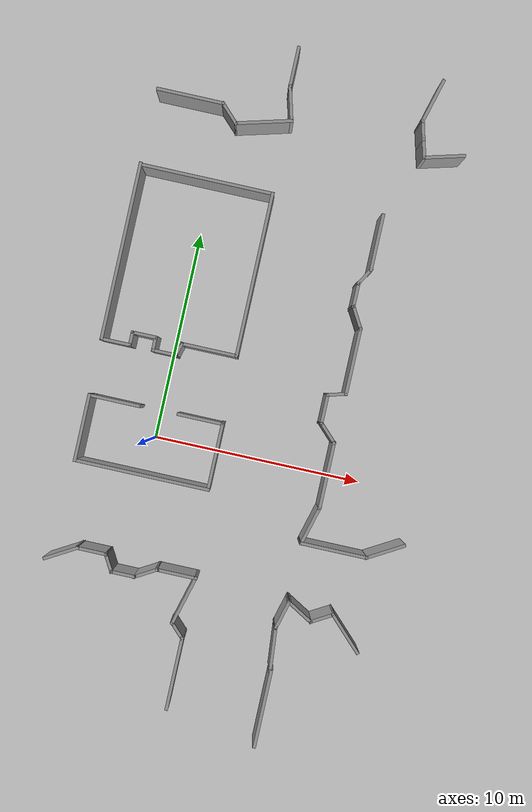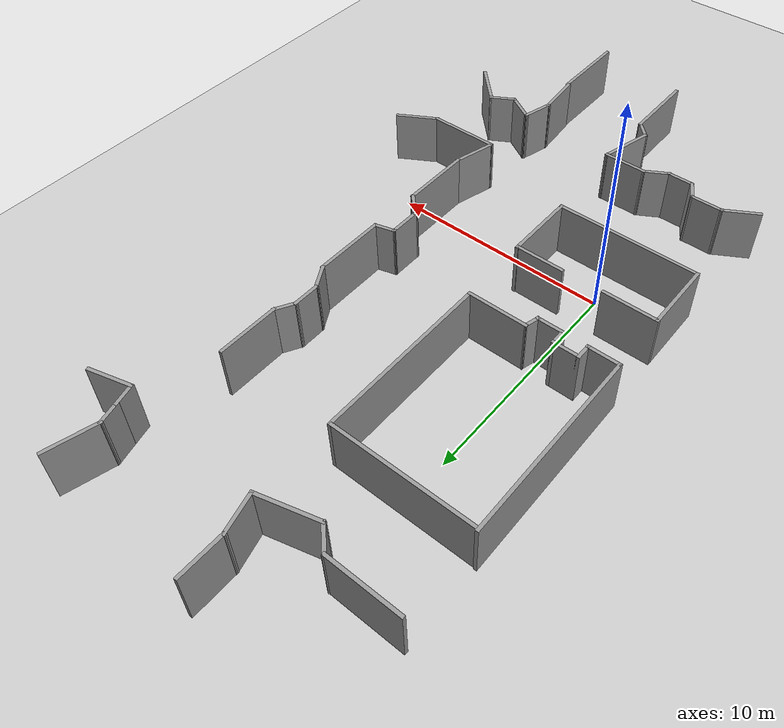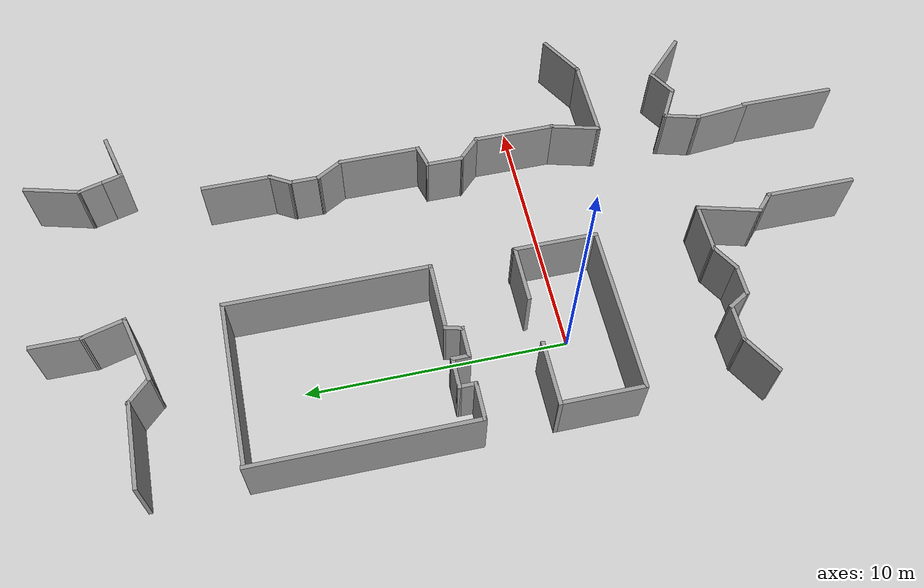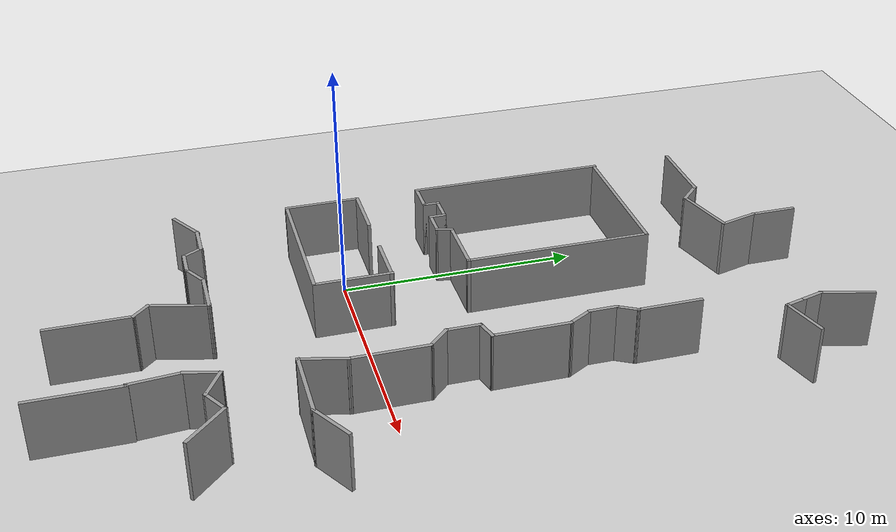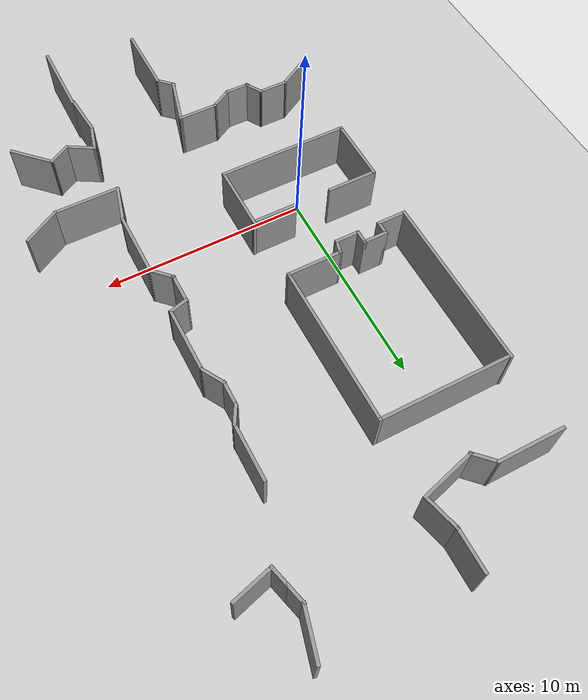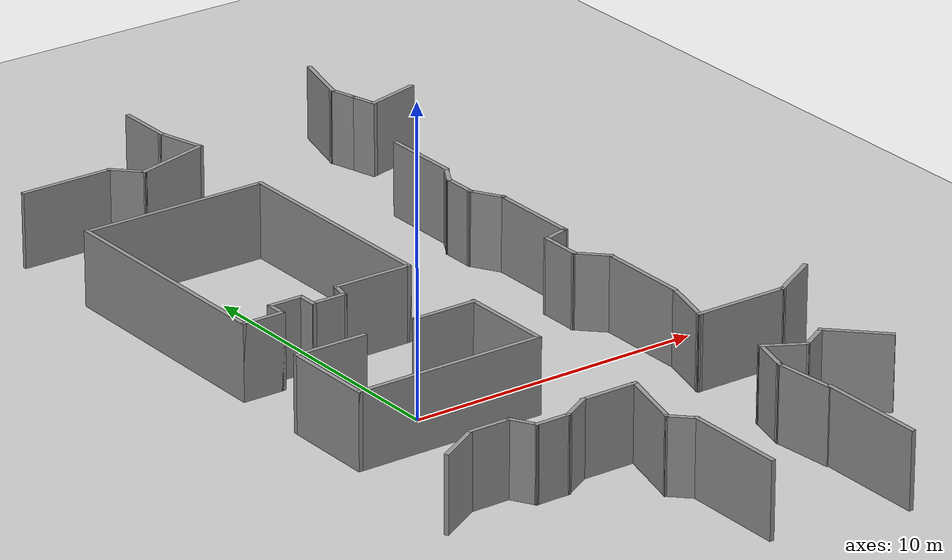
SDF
<sdf version="1.6">
 <world name="default">
  <model name="ground_plane">
   <static>1</static>
   <link name="link">
    <collision name="collision">
     <geometry><plane><normal>0 0 1</normal><size>100 100</size></plane></geometry>
     <surface><friction><ode><mu>100</mu><mu2>50</mu2></ode></friction></surface>
    </collision>
    <visual name="visual">
     <cast_shadows>0</cast_shadows>
     <geometry><plane><normal>0 0 1</normal><size>100 100</size></plane></geometry>
     <material>
      <script><uri>file://media/materials/scripts/gazebo.material</uri><name>Gazebo/Grey</name></script>
     </material>
    </visual>
   </link>
  </model>
  <model name="room">
   <pose>12.4952 3.15232 0 0 -0 0</pose>
   <link name="Wall_321">
    <collision name="Wall_321_Collision">
     <geometry><box><size>3.25 0.15 2.5</size></box></geometry>
     <pose>0 0 1.25 0 -0 0</pose>
    </collision>
    <visual name="Wall_321_Visual">
     <pose>0 0 1.25 0 -0 0</pose>
     <geometry><box><size>3.25 0.15 2.5</size></box></geometry>
     <material>
      <script><uri>file://media/materials/scripts/gazebo.material</uri><name>Gazebo/Grey</name></script>
      <ambient>1 1 1 1</ambient>
     </material>
     <meta><layer>0</layer></meta>
    </visual>
    <pose>-15.7858 -3.34429 0 0 0 -1.5708</pose>
   </link>
   <link name="Wall_323">
    <collision name="Wall_323_Collision">
     <geometry><box><size>6.5 0.15 2.5</size></box></geometry>
     <pose>0 0 1.25 0 -0 0</pose>
    </collision>
    <visual name="Wall_323_Visual">
     <pose>0 0 1.25 0 -0 0</pose>
     <geometry><box><size>6.5 0.15 2.5</size></box></geometry>
     <material>
      <script><uri>file://media/materials/scripts/gazebo.material</uri><name>Gazebo/Grey</name></script>
      <ambient>1 1 1 1</ambient>
     </material>
     <meta><layer>0</layer></meta>
    </visual>
    <pose>-12.6108 -4.89429 0 0 -0 0</pose>
   </link>
   <link name="Wall_324">
    <collision name="Wall_324_Collision">
     <geometry><box><size>3.30947 0.15 2.5</size></box></geometry>
     <pose>0 0 1.25 0 -0 0</pose>
    </collision>
    <visual name="Wall_324_Visual">
     <pose>0 0 1.25 0 -0 0</pose>
     <geometry><box><size>3.30947 0.15 2.5</size></box></geometry>
     <material>
      <script><uri>file://media/materials/scripts/gazebo.material</uri><name>Gazebo/Grey</name></script>
      <ambient>1 1 1 1</ambient>
     </material>
     <meta><layer>0</layer></meta>
    </visual>
    <pose>-9.4358 -3.31455 0 0 -0 1.5708</pose>
   </link>
   <link name="Wall_325">
    <collision name="Wall_325_Collision">
     <geometry><box><size>2.25 0.15 2.5</size></box></geometry>
     <pose>0 0 1.25 0 -0 0</pose>
    </collision>
    <visual name="Wall_325_Visual">
     <pose>0 0 1.25 0 -0 0</pose>
     <geometry><box><size>2.25 0.15 2.5</size></box></geometry>
     <material>
      <script><uri>file://media/materials/scripts/gazebo.material</uri><name>Gazebo/Grey</name></script>
      <ambient>1 1 1 1</ambient>
     </material>
     <meta><layer>0</layer></meta>
    </visual>
    <pose>-10.4858 -1.76455 0 0 -0 3.14159</pose>
   </link>
   <link name="Wall_327">
    <collision name="Wall_327_Collision">
     <geometry><box><size>2.5 0.15 2.5</size></box></geometry>
     <pose>0 0 1.25 0 -0 0</pose>
    </collision>
    <visual name="Wall_327_Visual">
     <pose>0 0 1.25 0 -0 0</pose>
     <geometry><box><size>2.5 0.15 2.5</size></box></geometry>
     <material>
      <script><uri>file://media/materials/scripts/gazebo.material</uri><name>Gazebo/Grey</name></script>
      <ambient>1 1 1 1</ambient>
     </material>
     <meta><layer>0</layer></meta>
    </visual>
    <pose>-14.6108 -1.79429 0 0 -0 0</pose>
   </link>
   <link name="Wall_334">
    <collision name="Wall_334_Collision">
     <geometry><box><size>8.5 0.15 2.5</size></box></geometry>
     <pose>0 0 1.25 0 -0 0</pose>
    </collision>
    <visual name="Wall_334_Visual">
     <pose>0 0 1.25 0 -0 0</pose>
     <geometry><box><size>8.5 0.15 2.5</size></box></geometry>
     <material>
      <script><uri>file://media/materials/scripts/gazebo.material</uri><name>Gazebo/Grey</name></script>
      <ambient>1 1 1 1</ambient>
     </material>
     <meta><layer>0</layer></meta>
    </visual>
    <pose>-15.8018 5.06416 0 0 0 -1.5708</pose>
   </link>
   <link name="Wall_335">
    <collision name="Wall_335_Collision">
     <geometry><box><size>1.5 0.15 2.5</size></box></geometry>
     <pose>0 0 1.25 0 -0 0</pose>
    </collision>
    <visual name="Wall_335_Visual">
     <pose>0 0 1.25 0 -0 0</pose>
     <geometry><box><size>1.5 0.15 2.5</size></box></geometry>
     <material>
      <script><uri>file://media/materials/scripts/gazebo.material</uri><name>Gazebo/Grey</name></script>
      <ambient>1 1 1 1</ambient>
     </material>
     <meta><layer>0</layer></meta>
    </visual>
    <pose>-15.1268 0.889158 0 0 -0 0</pose>
   </link>
   <link name="Wall_336">
    <collision name="Wall_336_Collision">
     <geometry><box><size>0.75 0.15 2.5</size></box></geometry>
     <pose>0 0 1.25 0 -0 0</pose>
    </collision>
    <visual name="Wall_336_Visual">
     <pose>0 0 1.25 0 -0 0</pose>
     <geometry><box><size>0.75 0.15 2.5</size></box></geometry>
     <material>
      <script><uri>file://media/materials/scripts/gazebo.material</uri><name>Gazebo/Grey</name></script>
      <ambient>1 1 1 1</ambient>
     </material>
     <meta><layer>0</layer></meta>
    </visual>
    <pose>-14.4518 1.18916 0 0 -0 1.5708</pose>
   </link>
   <link name="Wall_337">
    <collision name="Wall_337_Collision">
     <geometry><box><size>1.25 0.15 2.5</size></box></geometry>
     <pose>0 0 1.25 0 -0 0</pose>
    </collision>
    <visual name="Wall_337_Visual">
     <pose>0 0 1.25 0 -0 0</pose>
     <geometry><box><size>1.25 0.15 2.5</size></box></geometry>
     <material>
      <script><uri>file://media/materials/scripts/gazebo.material</uri><name>Gazebo/Grey</name></script>
      <ambient>1 1 1 1</ambient>
     </material>
     <meta><layer>0</layer></meta>
    </visual>
    <pose>-13.9018 1.48916 0 0 -0 0</pose>
   </link>
   <link name="Wall_338">
    <collision name="Wall_338_Collision">
     <geometry><box><size>0.75 0.15 2.5</size></box></geometry>
     <pose>0 0 1.25 0 -0 0</pose>
    </collision>
    <visual name="Wall_338_Visual">
     <pose>0 0 1.25 0 -0 0</pose>
     <geometry><box><size>0.75 0.15 2.5</size></box></geometry>
     <material>
      <script><uri>file://media/materials/scripts/gazebo.material</uri><name>Gazebo/Grey</name></script>
      <ambient>1 1 1 1</ambient>
     </material>
     <meta><layer>0</layer></meta>
    </visual>
    <pose>-13.3518 1.18916 0 0 0 -1.5708</pose>
   </link>
   <link name="Wall_339">
    <collision name="Wall_339_Collision">
     <geometry><box><size>1.25 0.15 2.5</size></box></geometry>
     <pose>0 0 1.25 0 -0 0</pose>
    </collision>
    <visual name="Wall_339_Visual">
     <pose>0 0 1.25 0 -0 0</pose>
     <geometry><box><size>1.25 0.15 2.5</size></box></geometry>
     <material>
      <script><uri>file://media/materials/scripts/gazebo.material</uri><name>Gazebo/Grey</name></script>
      <ambient>1 1 1 1</ambient>
     </material>
     <meta><layer>0</layer></meta>
    </visual>
    <pose>-12.8018 0.889158 0 0 -0 0</pose>
   </link>
   <link name="Wall_340">
    <collision name="Wall_340_Collision">
     <geometry><box><size>0.75 0.15 2.5</size></box></geometry>
     <pose>0 0 1.25 0 -0 0</pose>
    </collision>
    <visual name="Wall_340_Visual">
     <pose>0 0 1.25 0 -0 0</pose>
     <geometry><box><size>0.75 0.15 2.5</size></box></geometry>
     <material>
      <script><uri>file://media/materials/scripts/gazebo.material</uri><name>Gazebo/Grey</name></script>
      <ambient>1 1 1 1</ambient>
     </material>
     <meta><layer>0</layer></meta>
    </visual>
    <pose>-12.1742 1.17894 0 0 -0 1.309</pose>
   </link>
   <link name="Wall_341">
    <collision name="Wall_341_Collision">
     <geometry><box><size>2.75 0.15 2.5</size></box></geometry>
     <pose>0 0 1.25 0 -0 0</pose>
    </collision>
    <visual name="Wall_341_Visual">
     <pose>0 0 1.25 0 -0 0</pose>
     <geometry><box><size>2.75 0.15 2.5</size></box></geometry>
     <material>
      <script><uri>file://media/materials/scripts/gazebo.material</uri><name>Gazebo/Grey</name></script>
      <ambient>1 1 1 1</ambient>
     </material>
     <meta><layer>0</layer></meta>
    </visual>
    <pose>-10.7965 1.46871 0 0 -0 0</pose>
   </link>
   <link name="Wall_342">
    <collision name="Wall_342_Collision">
     <geometry><box><size>7.88038 0.15 2.5</size></box></geometry>
     <pose>0 0 1.25 0 -0 0</pose>
    </collision>
    <visual name="Wall_342_Visual">
     <pose>0 0 1.25 0 -0 0</pose>
     <geometry><box><size>7.88038 0.15 2.5</size></box></geometry>
     <material>
      <script><uri>file://media/materials/scripts/gazebo.material</uri><name>Gazebo/Grey</name></script>
      <ambient>1 1 1 1</ambient>
     </material>
     <meta><layer>0</layer></meta>
    </visual>
    <pose>-9.49654 5.3339 0 0 -0 1.5708</pose>
   </link>
   <link name="Wall_343">
    <collision name="Wall_343_Collision">
     <geometry><box><size>6.25 0.15 2.5</size></box></geometry>
     <pose>0 0 1.25 0 -0 0</pose>
    </collision>
    <visual name="Wall_343_Visual">
     <pose>0 0 1.25 0 -0 0</pose>
     <geometry><box><size>6.25 0.15 2.5</size></box></geometry>
     <material>
      <script><uri>file://media/materials/scripts/gazebo.material</uri><name>Gazebo/Grey</name></script>
      <ambient>1 1 1 1</ambient>
     </material>
     <meta><layer>0</layer></meta>
    </visual>
    <pose>-12.6064 9.19909 0 0 -0 3.14159</pose>
   </link>
   <link name="Wall_345">
    <collision name="Wall_345_Collision">
     <geometry><box><size>2.75 0.15 2.5</size></box></geometry>
     <pose>0 0 1.25 0 -0 0</pose>
    </collision>
    <visual name="Wall_345_Visual">
     <pose>0 0 1.25 0 -0 0</pose>
     <geometry><box><size>2.75 0.15 2.5</size></box></geometry>
     <material>
      <script><uri>file://media/materials/scripts/gazebo.material</uri><name>Gazebo/Grey</name></script>
      <ambient>1 1 1 1</ambient>
     </material>
     <meta><layer>0</layer></meta>
    </visual>
    <pose>-4.25628 8.03911 0 0 0 -1.5708</pose>
   </link>
   <link name="Wall_346">
    <collision name="Wall_346_Collision">
     <geometry><box><size>1 0.15 2.5</size></box></geometry>
     <pose>0 0 1.25 0 -0 0</pose>
    </collision>
    <visual name="Wall_346_Visual">
     <pose>0 0 1.25 0 -0 0</pose>
     <geometry><box><size>1 0.15 2.5</size></box></geometry>
     <material>
      <script><uri>file://media/materials/scripts/gazebo.material</uri><name>Gazebo/Grey</name></script>
      <ambient>1 1 1 1</ambient>
     </material>
     <meta><layer>0</layer></meta>
    </visual>
    <pose>-4.46878 6.37105 0 0 0 -2.0944</pose>
   </link>
   <link name="Wall_347">
    <collision name="Wall_347_Collision">
     <geometry><box><size>1.25 0.15 2.5</size></box></geometry>
     <pose>0 0 1.25 0 -0 0</pose>
    </collision>
    <visual name="Wall_347_Visual">
     <pose>0 0 1.25 0 -0 0</pose>
     <geometry><box><size>1.25 0.15 2.5</size></box></geometry>
     <material>
      <script><uri>file://media/materials/scripts/gazebo.material</uri><name>Gazebo/Grey</name></script>
      <ambient>1 1 1 1</ambient>
     </material>
     <meta><layer>0</layer></meta>
    </visual>
    <pose>-4.68128 5.45298 0 0 0 -1.5708</pose>
   </link>
   <link name="Wall_348">
    <collision name="Wall_348_Collision">
     <geometry><box><size>1.25 0.15 2.5</size></box></geometry>
     <pose>0 0 1.25 0 -0 0</pose>
    </collision>
    <visual name="Wall_348_Visual">
     <pose>0 0 1.25 0 -0 0</pose>
     <geometry><box><size>1.25 0.15 2.5</size></box></geometry>
     <material>
      <script><uri>file://media/materials/scripts/gazebo.material</uri><name>Gazebo/Grey</name></script>
      <ambient>1 1 1 1</ambient>
     </material>
     <meta><layer>0</layer></meta>
    </visual>
    <pose>-4.40628 4.42667 0 0 0 -1.0472</pose>
   </link>
   <link name="Wall_349">
    <collision name="Wall_349_Collision">
     <geometry><box><size>3.25 0.15 2.5</size></box></geometry>
     <pose>0 0 1.25 0 -0 0</pose>
    </collision>
    <visual name="Wall_349_Visual">
     <pose>0 0 1.25 0 -0 0</pose>
     <geometry><box><size>3.25 0.15 2.5</size></box></geometry>
     <material>
      <script><uri>file://media/materials/scripts/gazebo.material</uri><name>Gazebo/Grey</name></script>
      <ambient>1 1 1 1</ambient>
     </material>
     <meta><layer>0</layer></meta>
    </visual>
    <pose>-4.13128 2.40036 0 0 0 -1.5708</pose>
   </link>
   <link name="Wall_350">
    <collision name="Wall_350_Collision">
     <geometry><box><size>1 0.15 2.5</size></box></geometry>
     <pose>0 0 1.25 0 -0 0</pose>
    </collision>
    <visual name="Wall_350_Visual">
     <pose>0 0 1.25 0 -0 0</pose>
     <geometry><box><size>1 0.15 2.5</size></box></geometry>
     <material>
      <script><uri>file://media/materials/scripts/gazebo.material</uri><name>Gazebo/Grey</name></script>
      <ambient>1 1 1 1</ambient>
     </material>
     <meta><layer>0</layer></meta>
    </visual>
    <pose>-4.5418 0.740359 0 0 0 -2.87979</pose>
   </link>
   <link name="Wall_351">
    <collision name="Wall_351_Collision">
     <geometry><box><size>1.5 0.15 2.5</size></box></geometry>
     <pose>0 0 1.25 0 -0 0</pose>
    </collision>
    <visual name="Wall_351_Visual">
     <pose>0 0 1.25 0 -0 0</pose>
     <geometry><box><size>1.5 0.15 2.5</size></box></geometry>
     <material>
      <script><uri>file://media/materials/scripts/gazebo.material</uri><name>Gazebo/Grey</name></script>
      <ambient>1 1 1 1</ambient>
     </material>
     <meta><layer>0</layer></meta>
    </visual>
    <pose>-4.95232 -0.044639 0 0 0 -1.5708</pose>
   </link>
   <link name="Wall_352">
    <collision name="Wall_352_Collision">
     <geometry><box><size>1.25 0.15 2.5</size></box></geometry>
     <pose>0 0 1.25 0 -0 0</pose>
    </collision>
    <visual name="Wall_352_Visual">
     <pose>0 0 1.25 0 -0 0</pose>
     <geometry><box><size>1.25 0.15 2.5</size></box></geometry>
     <material>
      <script><uri>file://media/materials/scripts/gazebo.material</uri><name>Gazebo/Grey</name></script>
      <ambient>1 1 1 1</ambient>
     </material>
     <meta><layer>0</layer></meta>
    </visual>
    <pose>-4.56341 -1.10855 0 0 0 -0.785398</pose>
   </link>
   <link name="Wall_353">
    <collision name="Wall_353_Collision">
     <geometry><box><size>3.25 0.15 2.5</size></box></geometry>
     <pose>0 0 1.25 0 -0 0</pose>
    </collision>
    <visual name="Wall_353_Visual">
     <pose>0 0 1.25 0 -0 0</pose>
     <geometry><box><size>3.25 0.15 2.5</size></box></geometry>
     <material>
      <script><uri>file://media/materials/scripts/gazebo.material</uri><name>Gazebo/Grey</name></script>
      <ambient>1 1 1 1</ambient>
     </material>
     <meta><layer>0</layer></meta>
    </visual>
    <pose>-4.1745 -3.04746 0 0 0 -1.5708</pose>
   </link>
   <link name="Wall_354">
    <collision name="Wall_354_Collision">
     <geometry><box><size>2 0.15 2.5</size></box></geometry>
     <pose>0 0 1.25 0 -0 0</pose>
    </collision>
    <visual name="Wall_354_Visual">
     <pose>0 0 1.25 0 -0 0</pose>
     <geometry><box><size>2 0.15 2.5</size></box></geometry>
     <material>
      <script><uri>file://media/materials/scripts/gazebo.material</uri><name>Gazebo/Grey</name></script>
      <ambient>1 1 1 1</ambient>
     </material>
     <meta><layer>0</layer></meta>
    </visual>
    <pose>-4.41391 -5.49094 0 0 0 -1.8326</pose>
   </link>
   <link name="Wall_355">
    <collision name="Wall_355_Collision">
     <geometry><box><size>3.25 0.15 2.5</size></box></geometry>
     <pose>0 0 1.25 0 -0 0</pose>
    </collision>
    <visual name="Wall_355_Visual">
     <pose>0 0 1.25 0 -0 0</pose>
     <geometry><box><size>3.25 0.15 2.5</size></box></geometry>
     <material>
      <script><uri>file://media/materials/scripts/gazebo.material</uri><name>Gazebo/Grey</name></script>
      <ambient>1 1 1 1</ambient>
     </material>
     <meta><layer>0</layer></meta>
    </visual>
    <pose>-3.10332 -6.38442 0 0 -0 0</pose>
   </link>
   <link name="Wall_356">
    <collision name="Wall_356_Collision">
     <geometry><box><size>2 0.15 2.5</size></box></geometry>
     <pose>0 0 1.25 0 -0 0</pose>
    </collision>
    <visual name="Wall_356_Visual">
     <pose>0 0 1.25 0 -0 0</pose>
     <geometry><box><size>2 0.15 2.5</size></box></geometry>
     <material>
      <script><uri>file://media/materials/scripts/gazebo.material</uri><name>Gazebo/Grey</name></script>
      <ambient>1 1 1 1</ambient>
     </material>
     <meta><layer>0</layer></meta>
    </visual>
    <pose>-0.752246 -5.92192 0 0 -0 0.523599</pose>
   </link>
   <link name="Wall_403">
    <collision name="Wall_403_Collision">
     <geometry><box><size>2.25 0.15 2.5</size></box></geometry>
     <pose>0 0 1.25 0 -0 0</pose>
    </collision>
    <visual name="Wall_403_Visual">
     <pose>0 0 1.25 0 -0 0</pose>
     <geometry><box><size>2.25 0.15 2.5</size></box></geometry>
     <material>
      <script><uri>file://media/materials/scripts/gazebo.material</uri><name>Gazebo/Grey</name></script>
      <ambient>1 1 1 1</ambient>
     </material>
     <meta><layer>0</layer></meta>
    </visual>
    <pose>-3.14221 15.0353 0 0 0 -1.8326</pose>
   </link>
   <link name="Wall_404">
    <collision name="Wall_404_Collision">
     <geometry><box><size>1 0.15 2.5</size></box></geometry>
     <pose>0 0 1.25 0 -0 0</pose>
    </collision>
    <visual name="Wall_404_Visual">
     <pose>0 0 1.25 0 -0 0</pose>
     <geometry><box><size>1 0.15 2.5</size></box></geometry>
     <material>
      <script><uri>file://media/materials/scripts/gazebo.material</uri><name>Gazebo/Grey</name></script>
      <ambient>1 1 1 1</ambient>
     </material>
     <meta><layer>0</layer></meta>
    </visual>
    <pose>-3.30397 13.6105 0 0 0 -1.309</pose>
   </link>
   <link name="Wall_405">
    <collision name="Wall_405_Collision">
     <geometry><box><size>1 0.15 2.5</size></box></geometry>
     <pose>0 0 1.25 0 -0 0</pose>
    </collision>
    <visual name="Wall_405_Visual">
     <pose>0 0 1.25 0 -0 0</pose>
     <geometry><box><size>1 0.15 2.5</size></box></geometry>
     <material>
      <script><uri>file://media/materials/scripts/gazebo.material</uri><name>Gazebo/Grey</name></script>
      <ambient>1 1 1 1</ambient>
     </material>
     <meta><layer>0</layer></meta>
    </visual>
    <pose>-3.08398 12.7895 0 0 0 -1.309</pose>
   </link>
   <link name="Wall_406">
    <collision name="Wall_406_Collision">
     <geometry><box><size>2 0.15 2.5</size></box></geometry>
     <pose>0 0 1.25 0 -0 0</pose>
    </collision>
    <visual name="Wall_406_Visual">
     <pose>0 0 1.25 0 -0 0</pose>
     <geometry><box><size>2 0.15 2.5</size></box></geometry>
     <material>
      <script><uri>file://media/materials/scripts/gazebo.material</uri><name>Gazebo/Grey</name></script>
      <ambient>1 1 1 1</ambient>
     </material>
     <meta><layer>0</layer></meta>
    </visual>
    <pose>-2.08049 12.6184 0 0 -0 0.261799</pose>
   </link>
   <link name="Wall_412">
    <collision name="Wall_412_Collision">
     <geometry><box><size>3.25 0.15 2.5</size></box></geometry>
     <pose>0 0 1.25 0 -0 0</pose>
    </collision>
    <visual name="Wall_412_Visual">
     <pose>0 0 1.25 0 -0 0</pose>
     <geometry><box><size>3.25 0.15 2.5</size></box></geometry>
     <material>
      <script><uri>file://media/materials/scripts/gazebo.material</uri><name>Gazebo/Grey</name></script>
      <ambient>1 1 1 1</ambient>
     </material>
     <meta><layer>0</layer></meta>
    </visual>
    <pose>-14.2136 12.8064 0 0 -0 0</pose>
   </link>
   <link name="Wall_413">
    <collision name="Wall_413_Collision">
     <geometry><box><size>1.25 0.15 2.5</size></box></geometry>
     <pose>0 0 1.25 0 -0 0</pose>
    </collision>
    <visual name="Wall_413_Visual">
     <pose>0 0 1.25 0 -0 0</pose>
     <geometry><box><size>1.25 0.15 2.5</size></box></geometry>
     <material>
      <script><uri>file://media/materials/scripts/gazebo.material</uri><name>Gazebo/Grey</name></script>
      <ambient>1 1 1 1</ambient>
     </material>
     <meta><layer>0</layer></meta>
    </visual>
    <pose>-12.2747 12.4175 0 0 0 -0.785398</pose>
   </link>
   <link name="Wall_414">
    <collision name="Wall_414_Collision">
     <geometry><box><size>2.75 0.15 2.5</size></box></geometry>
     <pose>0 0 1.25 0 -0 0</pose>
    </collision>
    <visual name="Wall_414_Visual">
     <pose>0 0 1.25 0 -0 0</pose>
     <geometry><box><size>2.75 0.15 2.5</size></box></geometry>
     <material>
      <script><uri>file://media/materials/scripts/gazebo.material</uri><name>Gazebo/Grey</name></script>
      <ambient>1 1 1 1</ambient>
     </material>
     <meta><layer>0</layer></meta>
    </visual>
    <pose>-10.6301 12.3651 0 0 -0 0.261799</pose>
   </link>
   <link name="Wall_415">
    <collision name="Wall_415_Collision">
     <geometry><box><size>1.75 0.15 2.5</size></box></geometry>
     <pose>0 0 1.25 0 -0 0</pose>
    </collision>
    <visual name="Wall_415_Visual">
     <pose>0 0 1.25 0 -0 0</pose>
     <geometry><box><size>1.75 0.15 2.5</size></box></geometry>
     <material>
      <script><uri>file://media/materials/scripts/gazebo.material</uri><name>Gazebo/Grey</name></script>
      <ambient>1 1 1 1</ambient>
     </material>
     <meta><layer>0</layer></meta>
    </visual>
    <pose>-9.58143 13.4743 0 0 -0 1.8326</pose>
   </link>
   <link name="Wall_416">
    <collision name="Wall_416_Collision">
     <geometry><box><size>2 0.15 2.5</size></box></geometry>
     <pose>0 0 1.25 0 -0 0</pose>
    </collision>
    <visual name="Wall_416_Visual">
     <pose>0 0 1.25 0 -0 0</pose>
     <geometry><box><size>2 0.15 2.5</size></box></geometry>
     <material>
      <script><uri>file://media/materials/scripts/gazebo.material</uri><name>Gazebo/Grey</name></script>
      <ambient>1 1 1 1</ambient>
     </material>
     <meta><layer>0</layer></meta>
    </visual>
    <pose>-9.78849 15.172 0 0 -0 1.5708</pose>
   </link>
   <link name="Wall_426">
    <collision name="Wall_426_Collision">
     <geometry><box><size>1.75 0.15 2.5</size></box></geometry>
     <pose>0 0 1.25 0 -0 0</pose>
    </collision>
    <visual name="Wall_426_Visual">
     <pose>0 0 1.25 0 -0 0</pose>
     <geometry><box><size>1.75 0.15 2.5</size></box></geometry>
     <material>
      <script><uri>file://media/materials/scripts/gazebo.material</uri><name>Gazebo/Grey</name></script>
      <ambient>1 1 1 1</ambient>
     </material>
     <meta><layer>0</layer></meta>
    </visual>
    <pose>-15.4663 -9.25771 0 0 -0 0.523599</pose>
   </link>
   <link name="Wall_427">
    <collision name="Wall_427_Collision">
     <geometry><box><size>1.5 0.15 2.5</size></box></geometry>
     <pose>0 0 1.25 0 -0 0</pose>
    </collision>
    <visual name="Wall_427_Visual">
     <pose>0 0 1.25 0 -0 0</pose>
     <geometry><box><size>1.5 0.15 2.5</size></box></geometry>
     <material>
      <script><uri>file://media/materials/scripts/gazebo.material</uri><name>Gazebo/Grey</name></script>
      <ambient>1 1 1 1</ambient>
     </material>
     <meta><layer>0</layer></meta>
    </visual>
    <pose>-14.0985 -8.85771 0 0 -0 0</pose>
   </link>
   <link name="Wall_428">
    <collision name="Wall_428_Collision">
     <geometry><box><size>1 0.15 2.5</size></box></geometry>
     <pose>0 0 1.25 0 -0 0</pose>
    </collision>
    <visual name="Wall_428_Visual">
     <pose>0 0 1.25 0 -0 0</pose>
     <geometry><box><size>1 0.15 2.5</size></box></geometry>
     <material>
      <script><uri>file://media/materials/scripts/gazebo.material</uri><name>Gazebo/Grey</name></script>
      <ambient>1 1 1 1</ambient>
     </material>
     <meta><layer>0</layer></meta>
    </visual>
    <pose>-13.211 -9.22577 0 0 0 -1.0472</pose>
   </link>
   <link name="Wall_429">
    <collision name="Wall_429_Collision">
     <geometry><box><size>1.25 0.15 2.5</size></box></geometry>
     <pose>0 0 1.25 0 -0 0</pose>
    </collision>
    <visual name="Wall_429_Visual">
     <pose>0 0 1.25 0 -0 0</pose>
     <geometry><box><size>1.25 0.15 2.5</size></box></geometry>
     <material>
      <script><uri>file://media/materials/scripts/gazebo.material</uri><name>Gazebo/Grey</name></script>
      <ambient>1 1 1 1</ambient>
     </material>
     <meta><layer>0</layer></meta>
    </visual>
    <pose>-12.4485 -9.59383 0 0 -0 0</pose>
   </link>
   <link name="Wall_430">
    <collision name="Wall_430_Collision">
     <geometry><box><size>1.25 0.15 2.5</size></box></geometry>
     <pose>0 0 1.25 0 -0 0</pose>
    </collision>
    <visual name="Wall_430_Visual">
     <pose>0 0 1.25 0 -0 0</pose>
     <geometry><box><size>1.25 0.15 2.5</size></box></geometry>
     <material>
      <script><uri>file://media/materials/scripts/gazebo.material</uri><name>Gazebo/Grey</name></script>
      <ambient>1 1 1 1</ambient>
     </material>
     <meta><layer>0</layer></meta>
    </visual>
    <pose>-11.4221 -9.31883 0 0 -0 0.523599</pose>
   </link>
   <link name="Wall_431">
    <collision name="Wall_431_Collision">
     <geometry><box><size>2 0.15 2.5</size></box></geometry>
     <pose>0 0 1.25 0 -0 0</pose>
    </collision>
    <visual name="Wall_431_Visual">
     <pose>0 0 1.25 0 -0 0</pose>
     <geometry><box><size>2 0.15 2.5</size></box></geometry>
     <material>
      <script><uri>file://media/materials/scripts/gazebo.material</uri><name>Gazebo/Grey</name></script>
      <ambient>1 1 1 1</ambient>
     </material>
     <meta><layer>0</layer></meta>
    </visual>
    <pose>-10.0208 -9.04383 0 0 -0 0</pose>
   </link>
   <link name="Wall_432">
    <collision name="Wall_432_Collision">
     <geometry><box><size>2.5 0.15 2.5</size></box></geometry>
     <pose>0 0 1.25 0 -0 0</pose>
    </collision>
    <visual name="Wall_432_Visual">
     <pose>0 0 1.25 0 -0 0</pose>
     <geometry><box><size>2.5 0.15 2.5</size></box></geometry>
     <material>
      <script><uri>file://media/materials/scripts/gazebo.material</uri><name>Gazebo/Grey</name></script>
      <ambient>1 1 1 1</ambient>
     </material>
     <meta><layer>0</layer></meta>
    </visual>
    <pose>-9.39994 -10.1788 0 0 0 -1.8326</pose>
   </link>
   <link name="Wall_433">
    <collision name="Wall_433_Collision">
     <geometry><box><size>1 0.15 2.5</size></box></geometry>
     <pose>0 0 1.25 0 -0 0</pose>
    </collision>
    <visual name="Wall_433_Visual">
     <pose>0 0 1.25 0 -0 0</pose>
     <geometry><box><size>1 0.15 2.5</size></box></geometry>
     <material>
      <script><uri>file://media/materials/scripts/gazebo.material</uri><name>Gazebo/Grey</name></script>
      <ambient>1 1 1 1</ambient>
     </material>
     <meta><layer>0</layer></meta>
    </visual>
    <pose>-9.40353 -11.6143 0 0 0 -0.785398</pose>
   </link>
   <link name="Wall_434">
    <collision name="Wall_434_Collision">
     <geometry><box><size>3.5 0.15 2.5</size></box></geometry>
     <pose>0 0 1.25 0 -0 0</pose>
    </collision>
    <visual name="Wall_434_Visual">
     <pose>0 0 1.25 0 -0 0</pose>
     <geometry><box><size>3.5 0.15 2.5</size></box></geometry>
     <material>
      <script><uri>file://media/materials/scripts/gazebo.material</uri><name>Gazebo/Grey</name></script>
      <ambient>1 1 1 1</ambient>
     </material>
     <meta><layer>0</layer></meta>
    </visual>
    <pose>-9.10301 -13.5898 0 0 0 -1.5708</pose>
   </link>
   <link name="Wall_436">
    <collision name="Wall_436_Collision">
     <geometry><box><size>1.5 0.15 2.5</size></box></geometry>
     <pose>0 0 1.25 0 -0 0</pose>
    </collision>
    <visual name="Wall_436_Visual">
     <pose>0 0 1.25 0 -0 0</pose>
     <geometry><box><size>1.5 0.15 2.5</size></box></geometry>
     <material>
      <script><uri>file://media/materials/scripts/gazebo.material</uri><name>Gazebo/Grey</name></script>
      <ambient>1 1 1 1</ambient>
     </material>
     <meta><layer>0</layer></meta>
    </visual>
    <pose>-4.78533 -9.83512 0 0 0 -1.8326</pose>
   </link>
   <link name="Wall_437">
    <collision name="Wall_437_Collision">
     <geometry><box><size>2.15683 0.15 2.5</size></box></geometry>
     <pose>0 0 1.25 0 -0 0</pose>
    </collision>
    <visual name="Wall_437_Visual">
     <pose>0 0 1.25 0 -0 0</pose>
     <geometry><box><size>2.15683 0.15 2.5</size></box></geometry>
     <material>
      <script><uri>file://media/materials/scripts/gazebo.material</uri><name>Gazebo/Grey</name></script>
      <ambient>1 1 1 1</ambient>
     </material>
     <meta><layer>0</layer></meta>
    </visual>
    <pose>-4.86969 -11.4865 0 0 0 -1.48064</pose>
   </link>
   <link name="Wall_438">
    <collision name="Wall_438_Collision">
     <geometry><box><size>3.75 0.15 2.5</size></box></geometry>
     <pose>0 0 1.25 0 -0 0</pose>
    </collision>
    <visual name="Wall_438_Visual">
     <pose>0 0 1.25 0 -0 0</pose>
     <geometry><box><size>3.75 0.15 2.5</size></box></geometry>
     <material>
      <script><uri>file://media/materials/scripts/gazebo.material</uri><name>Gazebo/Grey</name></script>
      <ambient>1 1 1 1</ambient>
     </material>
     <meta><layer>0</layer></meta>
    </visual>
    <pose>-4.72734 -14.2858 0 0 0 -1.5708</pose>
   </link>
   <link name="Wall_440">
    <collision name="Wall_440_Collision">
     <geometry><box><size>1.5 0.15 2.5</size></box></geometry>
     <pose>0 0 1.25 0 -0 0</pose>
    </collision>
    <visual name="Wall_440_Visual">
     <pose>0 0 1.25 0 -0 0</pose>
     <geometry><box><size>1.5 0.15 2.5</size></box></geometry>
     <material>
      <script><uri>file://media/materials/scripts/gazebo.material</uri><name>Gazebo/Grey</name></script>
      <ambient>1 1 1 1</ambient>
     </material>
     <meta><layer>0</layer></meta>
    </visual>
    <pose>-4.02606 -9.52061 0 0 0 -0.523599</pose>
   </link>
   <link name="Wall_441">
    <collision name="Wall_441_Collision">
     <geometry><box><size>1.25 0.15 2.5</size></box></geometry>
     <pose>0 0 1.25 0 -0 0</pose>
    </collision>
    <visual name="Wall_441_Visual">
     <pose>0 0 1.25 0 -0 0</pose>
     <geometry><box><size>1.25 0.15 2.5</size></box></geometry>
     <material>
      <script><uri>file://media/materials/scripts/gazebo.material</uri><name>Gazebo/Grey</name></script>
      <ambient>1 1 1 1</ambient>
     </material>
     <meta><layer>0</layer></meta>
    </visual>
    <pose>-2.96518 -9.58311 0 0 -0 0.523599</pose>
   </link>
   <link name="Wall_442">
    <collision name="Wall_442_Collision">
     <geometry><box><size>2.25 0.15 2.5</size></box></geometry>
     <pose>0 0 1.25 0 -0 0</pose>
    </collision>
    <visual name="Wall_442_Visual">
     <pose>0 0 1.25 0 -0 0</pose>
     <geometry><box><size>2.25 0.15 2.5</size></box></geometry>
     <material>
      <script><uri>file://media/materials/scripts/gazebo.material</uri><name>Gazebo/Grey</name></script>
      <ambient>1 1 1 1</ambient>
     </material>
     <meta><layer>0</layer></meta>
    </visual>
    <pose>-1.7464 -10.0506 0 0 0 -0.785398</pose>
   </link>
   <static>1</static>
  </model>
 </world>
</sdf>
